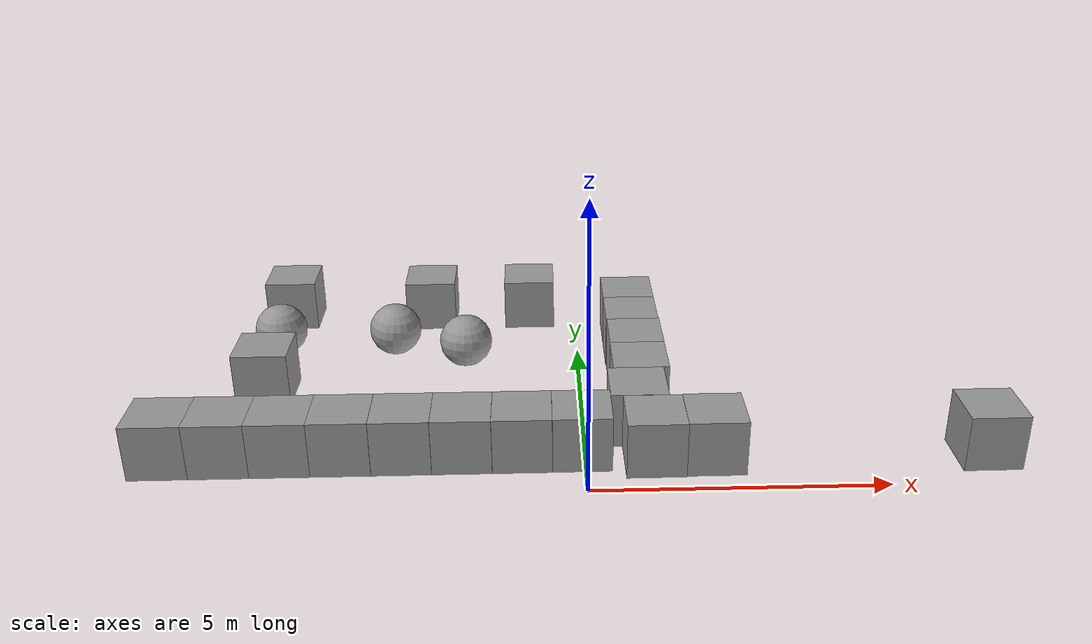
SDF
<sdf version="1.7">
 <world name="default">
  <gravity>0 0 -9.8</gravity>
  <magnetic_field>6e-06 2.3e-05 -4.2e-05</magnetic_field>
  <atmosphere type="adiabatic"/>
  <physics name="default_physics" default="0" type="ode">
   <max_step_size>0.001</max_step_size>
   <real_time_factor>1</real_time_factor>
   <real_time_update_rate>1000</real_time_update_rate>
  </physics>
  <scene>
   <ambient>0.4 0.4 0.4 1</ambient>
   <background>0.7 0.7 0.7 1</background>
   <shadows>1</shadows>
   <grid>0</grid>
   <origin_visual>0</origin_visual>
  </scene>
  <spherical_coordinates>
   <surface_model>EARTH_WGS84</surface_model>
   <latitude_deg>0</latitude_deg>
   <longitude_deg>0</longitude_deg>
   <elevation>0</elevation>
   <heading_deg>0</heading_deg>
  </spherical_coordinates>
  <light name="RetailShop_CeilingLight_001" type="point">
   <pose>2.77442 -3.62815 3.17847 0 -0 0</pose>
   <diffuse>0.2 0.2 0.2 1</diffuse>
   <specular>0.1 0.1 0.1 1</specular>
   <attenuation>
    <range>20</range>
    <constant>0.32</constant>
    <linear>0.01</linear>
    <quadratic>0.03</quadratic>
   </attenuation>
   <cast_shadows>0</cast_shadows>
   <direction>0 0 -1</direction>
   <spot><inner_angle>0</inner_angle><outer_angle>0</outer_angle><falloff>0</falloff></spot>
  </light>
  <light name="RetailShop_CeilingLight_002" type="point">
   <pose>5.38399 -5.38371 3.17847 0 -0 0</pose>
   <diffuse>0.2 0.2 0.2 1</diffuse>
   <specular>0.1 0.1 0.1 1</specular>
   <attenuation>
    <range>20</range>
    <constant>0.32</constant>
    <linear>0.01</linear>
    <quadratic>0.03</quadratic>
   </attenuation>
   <cast_shadows>0</cast_shadows>
   <direction>0 0 -1</direction>
   <spot><inner_angle>0</inner_angle><outer_angle>0</outer_angle><falloff>0</falloff></spot>
  </light>
  <light name="RetailShop_CeilingLight_003" type="point">
   <pose>5.38399 0.04192 3.17847 0 -0 0</pose>
   <diffuse>0.2 0.2 0.2 1</diffuse>
   <specular>0.1 0.1 0.1 1</specular>
   <attenuation>
    <range>20</range>
    <constant>0.32</constant>
    <linear>0.01</linear>
    <quadratic>0.03</quadratic>
   </attenuation>
   <cast_shadows>0</cast_shadows>
   <direction>0 0 -1</direction>
   <spot><inner_angle>0</inner_angle><outer_angle>0</outer_angle><falloff>0</falloff></spot>
  </light>
  <light name="RetailShop_CeilingLight_004" type="point">
   <pose>-3.21067 -5.38371 3.17847 0 -0 0</pose>
   <diffuse>0.2 0.2 0.2 1</diffuse>
   <specular>0.1 0.1 0.1 1</specular>
   <attenuation>
    <range>20</range>
    <constant>0.32</constant>
    <linear>0.01</linear>
    <quadratic>0.03</quadratic>
   </attenuation>
   <cast_shadows>0</cast_shadows>
   <direction>0 0 -1</direction>
   <spot><inner_angle>0</inner_angle><outer_angle>0</outer_angle><falloff>0</falloff></spot>
  </light>
  <light name="RetailShop_CeilingLight_005" type="point">
   <pose>-3.271 2.68593 3.17847 0 -0 0</pose>
   <diffuse>0.2 0.2 0.2 1</diffuse>
   <specular>0.1 0.1 0.1 1</specular>
   <attenuation>
    <range>20</range>
    <constant>0.32</constant>
    <linear>0.01</linear>
    <quadratic>0.03</quadratic>
   </attenuation>
   <cast_shadows>0</cast_shadows>
   <direction>0 0 -1</direction>
   <spot><inner_angle>0</inner_angle><outer_angle>0</outer_angle><falloff>0</falloff></spot>
  </light>
  <light name="RetailShop_CeilingLight_006" type="point">
   <pose>1.4932 4.69237 3.17847 0 -0 0</pose>
   <diffuse>0.2 0.2 0.2 1</diffuse>
   <specular>0.1 0.1 0.1 1</specular>
   <attenuation>
    <range>20</range>
    <constant>0.32</constant>
    <linear>0.01</linear>
    <quadratic>0.03</quadratic>
   </attenuation>
   <cast_shadows>0</cast_shadows>
   <direction>0 0 -1</direction>
   <spot><inner_angle>0</inner_angle><outer_angle>0</outer_angle><falloff>0</falloff></spot>
  </light>
  <audio><device>default</device></audio>
  <light name="user_directional_light_0" type="directional">
   <pose>1.49712 -12.0596 1 0 -0 0</pose>
   <diffuse>0.2 0.2 0.2 1</diffuse>
   <specular>0.1 0.1 0.1 1</specular>
   <direction>0.1 0.1 -0.9</direction>
   <attenuation>
    <range>20</range>
    <constant>0.5</constant>
    <linear>0.01</linear>
    <quadratic>0.001</quadratic>
   </attenuation>
   <spot><inner_angle>0</inner_angle><outer_angle>0</outer_angle><falloff>0</falloff></spot>
  </light>
  <model name="unit_sphere_0">
   <pose>-2.17255 4.52625 0.513382 0.002254 0.001114 1e-06</pose>
   <link name="link">
    <inertial>
     <mass>1</mass>
     <inertia><ixx>0.1</ixx><ixy>0</ixy><ixz>0</ixz><iyy>0.1</iyy><iyz>0</iyz><izz>0.1</izz></inertia>
    </inertial>
    <collision name="collision"><geometry><sphere><radius>0.5</radius></sphere></geometry></collision>
    <visual name="visual">
     <geometry><sphere><radius>0.5</radius></sphere></geometry>
     <material>
      <script><name>Gazebo/Grey</name><uri>file://media/materials/scripts/gazebo.material</uri></script>
     </material>
    </visual>
   </link>
  </model>
  <model name="unit_box">
   <pose>-2.96245 6.59694 0.513382 -0 -0 -2.1e-05</pose>
   <link name="link">
    <inertial>
     <mass>1</mass>
     <inertia>
      <ixx>0.166667</ixx>
      <ixy>0</ixy>
      <ixz>0</ixz>
      <iyy>0.166667</iyy>
      <iyz>0</iyz>
      <izz>0.166667</izz>
     </inertia>
    </inertial>
    <collision name="collision"><geometry><box><size>1 1 1</size></box></geometry></collision>
    <visual name="visual">
     <geometry><box><size>1 1 1</size></box></geometry>
     <material>
      <script><name>Gazebo/Grey</name><uri>file://media/materials/scripts/gazebo.material</uri></script>
     </material>
    </visual>
   </link>
  </model>
  <model name="unit_sphere_2">
   <pose>-3.58601 5.08504 0.513382 0.06034 0.06407 0.001934</pose>
   <link name="link">
    <inertial>
     <mass>1</mass>
     <inertia><ixx>0.1</ixx><ixy>0</ixy><ixz>0</ixz><iyy>0.1</iyy><iyz>0</iyz><izz>0.1</izz></inertia>
    </inertial>
    <collision name="collision"><geometry><sphere><radius>0.5</radius></sphere></geometry></collision>
    <visual name="visual">
     <geometry><sphere><radius>0.5</radius></sphere></geometry>
     <material>
      <script><name>Gazebo/Grey</name><uri>file://media/materials/scripts/gazebo.material</uri></script>
     </material>
    </visual>
   </link>
  </model>
  <model name="unit_box_1">
   <pose>2.14944 0.853754 0.513382 0 -0 0.000472</pose>
   <link name="link">
    <inertial>
     <mass>1</mass>
     <inertia>
      <ixx>0.166667</ixx>
      <ixy>0</ixy>
      <ixz>0</ixz>
      <iyy>0.166667</iyy>
      <iyz>0</iyz>
      <izz>0.166667</izz>
     </inertia>
    </inertial>
    <collision name="collision"><geometry><box><size>1 1 1</size></box></geometry></collision>
    <visual name="visual">
     <geometry><box><size>1 1 1</size></box></geometry>
     <material>
      <script><name>Gazebo/Grey</name><uri>file://media/materials/scripts/gazebo.material</uri></script>
     </material>
    </visual>
   </link>
  </model>
  <model name="unit_box_2">
   <pose>1.14806 0.833102 0.513382 0 -0 0.003358</pose>
   <link name="link">
    <inertial>
     <mass>1</mass>
     <inertia>
      <ixx>0.166667</ixx>
      <ixy>0</ixy>
      <ixz>0</ixz>
      <iyy>0.166667</iyy>
      <iyz>0</iyz>
      <izz>0.166667</izz>
     </inertia>
    </inertial>
    <collision name="collision"><geometry><box><size>1 1 1</size></box></geometry></collision>
    <visual name="visual">
     <geometry><box><size>1 1 1</size></box></geometry>
     <material>
      <script><name>Gazebo/Grey</name><uri>file://media/materials/scripts/gazebo.material</uri></script>
     </material>
    </visual>
   </link>
  </model>
  <model name="unit_box_3">
   <pose>0.935443 1.83954 0.513376 -1e-06 -8e-06 0.00329</pose>
   <link name="link">
    <inertial>
     <mass>1</mass>
     <inertia>
      <ixx>0.166667</ixx>
      <ixy>0</ixy>
      <ixz>0</ixz>
      <iyy>0.166667</iyy>
      <iyz>0</iyz>
      <izz>0.166667</izz>
     </inertia>
    </inertial>
    <collision name="collision"><geometry><box><size>1 1 1</size></box></geometry></collision>
    <visual name="visual">
     <geometry><box><size>1 1 1</size></box></geometry>
     <material>
      <script><name>Gazebo/Grey</name><uri>file://media/materials/scripts/gazebo.material</uri></script>
     </material>
    </visual>
   </link>
  </model>
  <model name="unit_box_4">
   <pose>1.04532 2.84008 0.513382 0 -0 0.00289</pose>
   <link name="link">
    <inertial>
     <mass>1</mass>
     <inertia>
      <ixx>0.166667</ixx>
      <ixy>0</ixy>
      <ixz>0</ixz>
      <iyy>0.166667</iyy>
      <iyz>0</iyz>
      <izz>0.166667</izz>
     </inertia>
    </inertial>
    <collision name="collision"><geometry><box><size>1 1 1</size></box></geometry></collision>
    <visual name="visual">
     <geometry><box><size>1 1 1</size></box></geometry>
     <material>
      <script><name>Gazebo/Grey</name><uri>file://media/materials/scripts/gazebo.material</uri></script>
     </material>
    </visual>
   </link>
  </model>
  <model name="unit_box_5">
   <pose>1.04615 3.84011 0.513382 0 -0 0.00283</pose>
   <link name="link">
    <inertial>
     <mass>1</mass>
     <inertia>
      <ixx>0.166667</ixx>
      <ixy>0</ixy>
      <ixz>0</ixz>
      <iyy>0.166667</iyy>
      <iyz>0</iyz>
      <izz>0.166667</izz>
     </inertia>
    </inertial>
    <collision name="collision"><geometry><box><size>1 1 1</size></box></geometry></collision>
    <visual name="visual">
     <geometry><box><size>1 1 1</size></box></geometry>
     <material>
      <script><name>Gazebo/Grey</name><uri>file://media/materials/scripts/gazebo.material</uri></script>
     </material>
    </visual>
   </link>
  </model>
  <model name="unit_box_6">
   <pose>1.03253 4.84033 0.513382 0 -0 0.002332</pose>
   <link name="link">
    <inertial>
     <mass>1</mass>
     <inertia>
      <ixx>0.166667</ixx>
      <ixy>0</ixy>
      <ixz>0</ixz>
      <iyy>0.166667</iyy>
      <iyz>0</iyz>
      <izz>0.166667</izz>
     </inertia>
    </inertial>
    <collision name="collision"><geometry><box><size>1 1 1</size></box></geometry></collision>
    <visual name="visual">
     <geometry><box><size>1 1 1</size></box></geometry>
     <material>
      <script><name>Gazebo/Grey</name><uri>file://media/materials/scripts/gazebo.material</uri></script>
     </material>
    </visual>
   </link>
  </model>
  <model name="unit_box_7">
   <pose>1.03157 5.84053 0.513382 0 -0 0.002233</pose>
   <link name="link">
    <inertial>
     <mass>1</mass>
     <inertia>
      <ixx>0.166667</ixx>
      <ixy>0</ixy>
      <ixz>0</ixz>
      <iyy>0.166667</iyy>
      <iyz>0</iyz>
      <izz>0.166667</izz>
     </inertia>
    </inertial>
    <collision name="collision"><geometry><box><size>1 1 1</size></box></geometry></collision>
    <visual name="visual">
     <geometry><box><size>1 1 1</size></box></geometry>
     <material>
      <script><name>Gazebo/Grey</name><uri>file://media/materials/scripts/gazebo.material</uri></script>
     </material>
    </visual>
   </link>
  </model>
  <model name="unit_box_8">
   <pose>-7.0754 1.04665 0.513382 0 0 -1e-06</pose>
   <link name="link">
    <inertial>
     <mass>1</mass>
     <inertia>
      <ixx>0.166667</ixx>
      <ixy>0</ixy>
      <ixz>0</ixz>
      <iyy>0.166667</iyy>
      <iyz>0</iyz>
      <izz>0.166667</izz>
     </inertia>
    </inertial>
    <collision name="collision"><geometry><box><size>1 1 1</size></box></geometry></collision>
    <visual name="visual">
     <geometry><box><size>1 1 1</size></box></geometry>
     <material>
      <script><name>Gazebo/Grey</name><uri>file://media/materials/scripts/gazebo.material</uri></script>
     </material>
    </visual>
   </link>
  </model>
  <model name="unit_box_9">
   <pose>-6.07505 1.04673 0.513382 0 -0 1e-06</pose>
   <link name="link">
    <inertial>
     <mass>1</mass>
     <inertia>
      <ixx>0.166667</ixx>
      <ixy>0</ixy>
      <ixz>0</ixz>
      <iyy>0.166667</iyy>
      <iyz>0</iyz>
      <izz>0.166667</izz>
     </inertia>
    </inertial>
    <collision name="collision"><geometry><box><size>1 1 1</size></box></geometry></collision>
    <visual name="visual">
     <geometry><box><size>1 1 1</size></box></geometry>
     <material>
      <script><name>Gazebo/Grey</name><uri>file://media/materials/scripts/gazebo.material</uri></script>
     </material>
    </visual>
   </link>
  </model>
  <model name="unit_box_10">
   <pose>-5.07491 1.0478 0.513382 -0 -0 -1e-06</pose>
   <link name="link">
    <inertial>
     <mass>1</mass>
     <inertia>
      <ixx>0.166667</ixx>
      <ixy>0</ixy>
      <ixz>0</ixz>
      <iyy>0.166667</iyy>
      <iyz>0</iyz>
      <izz>0.166667</izz>
     </inertia>
    </inertial>
    <collision name="collision"><geometry><box><size>1 1 1</size></box></geometry></collision>
    <visual name="visual">
     <geometry><box><size>1 1 1</size></box></geometry>
     <material>
      <script><name>Gazebo/Grey</name><uri>file://media/materials/scripts/gazebo.material</uri></script>
     </material>
    </visual>
   </link>
  </model>
  <model name="unit_box_11">
   <pose>-4.07473 1.04863 0.513382 0 -0 0</pose>
   <link name="link">
    <inertial>
     <mass>1</mass>
     <inertia>
      <ixx>0.166667</ixx>
      <ixy>0</ixy>
      <ixz>0</ixz>
      <iyy>0.166667</iyy>
      <iyz>0</iyz>
      <izz>0.166667</izz>
     </inertia>
    </inertial>
    <collision name="collision"><geometry><box><size>1 1 1</size></box></geometry></collision>
    <visual name="visual">
     <geometry><box><size>1 1 1</size></box></geometry>
     <material>
      <script><name>Gazebo/Grey</name><uri>file://media/materials/scripts/gazebo.material</uri></script>
     </material>
    </visual>
   </link>
  </model>
  <model name="unit_box_12">
   <pose>-3.07286 1.04892 0.513382 -0 -0 -0</pose>
   <link name="link">
    <inertial>
     <mass>1</mass>
     <inertia>
      <ixx>0.166667</ixx>
      <ixy>0</ixy>
      <ixz>0</ixz>
      <iyy>0.166667</iyy>
      <iyz>0</iyz>
      <izz>0.166667</izz>
     </inertia>
    </inertial>
    <collision name="collision"><geometry><box><size>1 1 1</size></box></geometry></collision>
    <visual name="visual">
     <geometry><box><size>1 1 1</size></box></geometry>
     <material>
      <script><name>Gazebo/Grey</name><uri>file://media/materials/scripts/gazebo.material</uri></script>
     </material>
    </visual>
   </link>
  </model>
  <model name="unit_box_13">
   <pose>-2.071 1.0496 0.513382 -0 -0 -0</pose>
   <link name="link">
    <inertial>
     <mass>1</mass>
     <inertia>
      <ixx>0.166667</ixx>
      <ixy>0</ixy>
      <ixz>0</ixz>
      <iyy>0.166667</iyy>
      <iyz>0</iyz>
      <izz>0.166667</izz>
     </inertia>
    </inertial>
    <collision name="collision"><geometry><box><size>1 1 1</size></box></geometry></collision>
    <visual name="visual">
     <geometry><box><size>1 1 1</size></box></geometry>
     <material>
      <script><name>Gazebo/Grey</name><uri>file://media/materials/scripts/gazebo.material</uri></script>
     </material>
    </visual>
   </link>
  </model>
  <model name="unit_box_14">
   <pose>-1.06917 1.0503 0.513382 -0 -0 -0</pose>
   <link name="link">
    <inertial>
     <mass>1</mass>
     <inertia>
      <ixx>0.166667</ixx>
      <ixy>0</ixy>
      <ixz>0</ixz>
      <iyy>0.166667</iyy>
      <iyz>0</iyz>
      <izz>0.166667</izz>
     </inertia>
    </inertial>
    <collision name="collision"><geometry><box><size>1 1 1</size></box></geometry></collision>
    <visual name="visual">
     <geometry><box><size>1 1 1</size></box></geometry>
     <material>
      <script><name>Gazebo/Grey</name><uri>file://media/materials/scripts/gazebo.material</uri></script>
     </material>
    </visual>
   </link>
  </model>
  <model name="unit_box_15">
   <pose>-0.067425 1.05484 0.513382 -0 -0 -0</pose>
   <link name="link">
    <inertial>
     <mass>1</mass>
     <inertia>
      <ixx>0.166667</ixx>
      <ixy>0</ixy>
      <ixz>0</ixz>
      <iyy>0.166667</iyy>
      <iyz>0</iyz>
      <izz>0.166667</izz>
     </inertia>
    </inertial>
    <collision name="collision"><geometry><box><size>1 1 1</size></box></geometry></collision>
    <visual name="visual">
     <geometry><box><size>1 1 1</size></box></geometry>
     <material>
      <script><name>Gazebo/Grey</name><uri>file://media/materials/scripts/gazebo.material</uri></script>
     </material>
    </visual>
   </link>
  </model>
  <model name="unit_box_16">
   <pose>-0.944875 6.59851 0.513382 -0 -0 -0</pose>
   <link name="link">
    <inertial>
     <mass>1</mass>
     <inertia>
      <ixx>0.166667</ixx>
      <ixy>0</ixy>
      <ixz>0</ixz>
      <iyy>0.166667</iyy>
      <iyz>0</iyz>
      <izz>0.166667</izz>
     </inertia>
    </inertial>
    <collision name="collision"><geometry><box><size>1 1 1</size></box></geometry></collision>
    <visual name="visual">
     <geometry><box><size>1 1 1</size></box></geometry>
     <material>
      <script><name>Gazebo/Grey</name><uri>file://media/materials/scripts/gazebo.material</uri></script>
     </material>
    </visual>
   </link>
  </model>
  <model name="unit_box_17">
   <pose>-5.82032 6.69437 0.513382 -0 -0 -0</pose>
   <link name="link">
    <inertial>
     <mass>1</mass>
     <inertia>
      <ixx>0.166667</ixx>
      <ixy>0</ixy>
      <ixz>0</ixz>
      <iyy>0.166667</iyy>
      <iyz>0</iyz>
      <izz>0.166667</izz>
     </inertia>
    </inertial>
    <collision name="collision"><geometry><box><size>1 1 1</size></box></geometry></collision>
    <visual name="visual">
     <geometry><box><size>1 1 1</size></box></geometry>
     <material>
      <script><name>Gazebo/Grey</name><uri>file://media/materials/scripts/gazebo.material</uri></script>
     </material>
    </visual>
   </link>
  </model>
  <model name="unit_box_18">
   <pose>6.77991 0.852487 0.513382 0 -0 0.005039</pose>
   <link name="link">
    <inertial>
     <mass>1</mass>
     <inertia>
      <ixx>0.166667</ixx>
      <ixy>0</ixy>
      <ixz>0</ixz>
      <iyy>0.166667</iyy>
      <iyz>0</iyz>
      <izz>0.166667</izz>
     </inertia>
    </inertial>
    <collision name="collision"><geometry><box><size>1 1 1</size></box></geometry></collision>
    <visual name="visual">
     <geometry><box><size>1 1 1</size></box></geometry>
     <material>
      <script><name>Gazebo/Grey</name><uri>file://media/materials/scripts/gazebo.material</uri></script>
     </material>
    </visual>
   </link>
  </model>
  <model name="unit_box_19">
   <pose>-5.81271 3.47905 0.513378 -7e-06 2e-06 -0.007909</pose>
   <link name="link">
    <inertial>
     <mass>1</mass>
     <inertia>
      <ixx>0.166667</ixx>
      <ixy>0</ixy>
      <ixz>0</ixz>
      <iyy>0.166667</iyy>
      <iyz>0</iyz>
      <izz>0.166667</izz>
     </inertia>
    </inertial>
    <collision name="collision"><geometry><box><size>1 1 1</size></box></geometry></collision>
    <visual name="visual">
     <geometry><box><size>1 1 1</size></box></geometry>
     <material>
      <script><name>Gazebo/Grey</name><uri>file://media/materials/scripts/gazebo.material</uri></script>
     </material>
    </visual>
   </link>
  </model>
  <model name="unit_sphere">
   <pose>-5.83773 5.15039 0.513382 0 -0 0</pose>
   <link name="link">
    <inertial>
     <mass>1</mass>
     <inertia><ixx>0.1</ixx><ixy>0</ixy><ixz>0</ixz><iyy>0.1</iyy><iyz>0</iyz><izz>0.1</izz></inertia>
    </inertial>
    <collision name="collision"><geometry><sphere><radius>0.5</radius></sphere></geometry></collision>
    <visual name="visual">
     <geometry><sphere><radius>0.5</radius></sphere></geometry>
     <material>
      <script><name>Gazebo/Grey</name><uri>file://media/materials/scripts/gazebo.material</uri></script>
     </material>
    </visual>
   </link>
  </model>
 </world>
</sdf>
